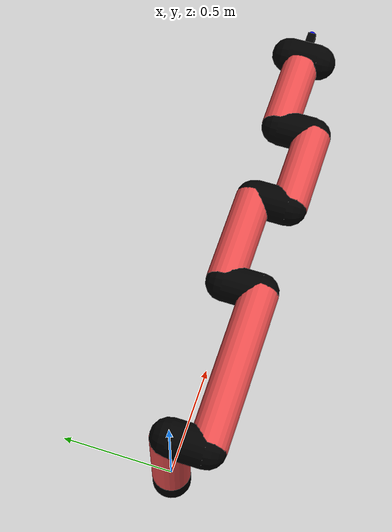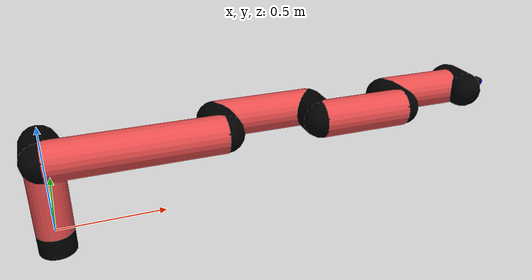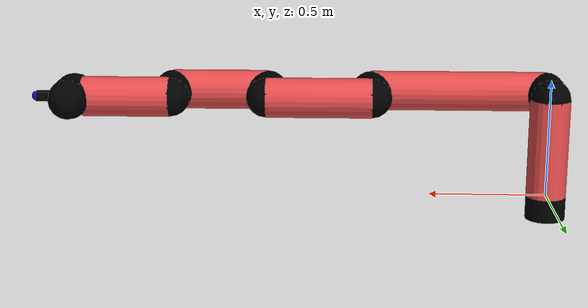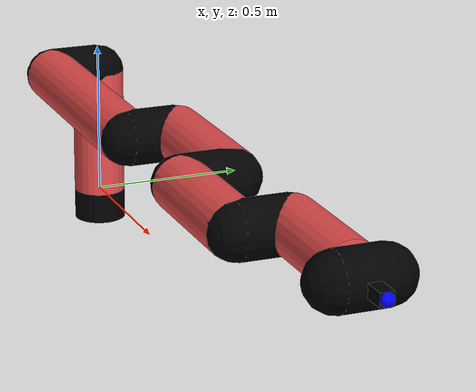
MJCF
<mujoco model="manipulator">
		<compiler angle="degree" coordinate="local" inertiafromgeom="auto" meshdir="meshes/"/>
		<option gravity="0 0 0" integrator="RK4" iterations="30" timestep="0.01"/>

		<default>
		<joint armature="1" limited="true" stiffness="10" damping="15" frictionloss="5.0"/>
		<geom conaffinity="1" condim="3" contype="1" friction=".5 .1 .1" margin="0.002"/>
		<motor ctrllimited="true"/>
		<position ctrllimited="true"/>
		</default>

		<asset>
		<texture builtin="gradient" height="100" rgb1="1.0 1.0 1.0" rgb2="1.0 1.0 1.0" type="skybox" width="100"/>
		<texture builtin="flat" height="32" name="arm_tex" rgb1="0.9 0.3 0.3" type="2d" width="32"/>
		<texture builtin="flat" height="32" name="gripper_tex" rgb1="0.0 0.0 0.0" type="cube" width="32"/>

		<material name="arm_mat" shininess="0.1" specular="0.1" texture="arm_tex"/>
		<material name="gripper_mat" shininess="1" specular="1" texture="gripper_tex"/>
		</asset>

		<worldbody>
		<light cutoff="45" diffuse=".8 .8 .8" dir="0 0.16 -1" directional="false" name="light" pos="0 -2.0 8.0" specular="0.3 0.3 0.3"/>

		<body name="base_link" pos="0 0 -0.1">
		<geom fromto="0 0 0 0 0 0.1" material="arm_mat" name="base_link" rgba="0.0 0.0 0.0 1" size="0.085" type="cylinder"/>
		</body>

		<body name="l1" pos="0 0 0">
<geom fromto="0 0 0 0 0 0.42" material="arm_mat" name="l1" rgba="0.9 0.3 0.3 1" size="0.085" type="cylinder"/>
<geom fromto="0 0 0.42 0 -0.16 0.42" material="arm_mat" name="l1_ex" rgba="0.0 0.0 0.0 1" size="0.085" type="capsule"/>
<joint axis="0 0 1" name="j1" pos="0 0 0" range="-90 90" damping="23.51" frictionloss="5.28"/>

<body name="l2" pos="0 -0.16 0.42">
<geom fromto="0 0 0 0.75 0 0" material="arm_mat" name="l2" rgba="0.9 0.3 0.3 1" size="0.085" type="cylinder"/>
<geom fromto="0.75 0 0 0.75 0.16 0" material="arm_mat" name="l2_ex" rgba="0.0 0.0 0.0 1" size="0.085" type="capsule"/>
<joint axis="0.0 1.0 0.0" name="j2" pos="0 0 0" range="-90 60" damping="22.57" frictionloss="14.73"/>

<body name="l3" pos="0.75 0.16 0">
<geom fromto="0 0 0 0.45 0 0" material="arm_mat" name="l3" rgba="0.9 0.3 0.3 1" size="0.085" type="cylinder"/>
<geom fromto="0.45 0 0 0.45 -0.16 0" material="arm_mat" name="l3_ex" rgba="0.0 0.0 0.0 1" size="0.085" type="capsule"/>
<joint axis="0.0 1.0 0.0" name="j3" pos="0 0 0" range="-30 60" damping="13.14" frictionloss="7.79"/>

<body name="l4" pos="0.45 -0.16 0">
<geom fromto="0 0 0 0.41 0 0" material="arm_mat" name="l4" rgba="0.9 0.3 0.3 1" size="0.085" type="cylinder"/>
<geom fromto="0.41 0 0 0.41 0.16 0" material="arm_mat" name="l4_ex" rgba="0.0 0.0 0.0 1" size="0.085" type="capsule"/>
<joint axis="0.0 1.0 0.0" name="j4" pos="0 0 0" range="-30 60" damping="44.66" frictionloss="14.09"/>

<body name="l5" pos="0.41 0.16 0">
<geom fromto="0 0 0 0.37 0 0" material="arm_mat" name="l5" rgba="0.9 0.3 0.3 1" size="0.085" type="cylinder"/>
<joint axis="0.0 1.0 0.0" name="j5" pos="0 0 0" range="-30 60" damping="18.41" frictionloss="9.19"/>

<body name="gripper" pos="0.37 0 0">
<geom fromto="0.05 -0.07 0 0.05 0.07 0" material="gripper_mat" name="gripper" rgba="0.0 0.0 0.0 1" size="0.085" type="capsule"/><joint axis="1 0 0" name="j6" pos="0 0 0" range="-90 90" damping="15" frictionloss="5.0"/><body name="finger" pos="0.1 0 0">
<geom fromto="0 0.0 0 0.1 0.0 0" material="gripper_mat" name="finger" rgba="0.0 0.0 0.0 1" size="0.020 0.06 0.06" type="box"/>
</body>
<site name="current" pos="0.2 0. 0.0" rgba="0. 0. 1.0 1" size="0.02" type="sphere"/>
</body>
</body>
</body>
</body>
</body>
</body>
</worldbody>
<actuator>
<motor ctrllimited="true" ctrlrange="-1.0 1.0" joint="j1" gear="81.38"/>
<motor ctrllimited="true" ctrlrange="-1.0 1.0" joint="j2" gear="45.6"/>
<motor ctrllimited="true" ctrlrange="-1.0 1.0" joint="j3" gear="118.7"/>
<motor ctrllimited="true" ctrlrange="-1.0 1.0" joint="j4" gear="103.63"/>
<motor ctrllimited="true" ctrlrange="-1.0 1.0" joint="j5" gear="47.16"/>
<motor ctrllimited="true" ctrlrange="-1.0 1.0" joint="j6" gear="80"/>
</actuator>
</mujoco>
